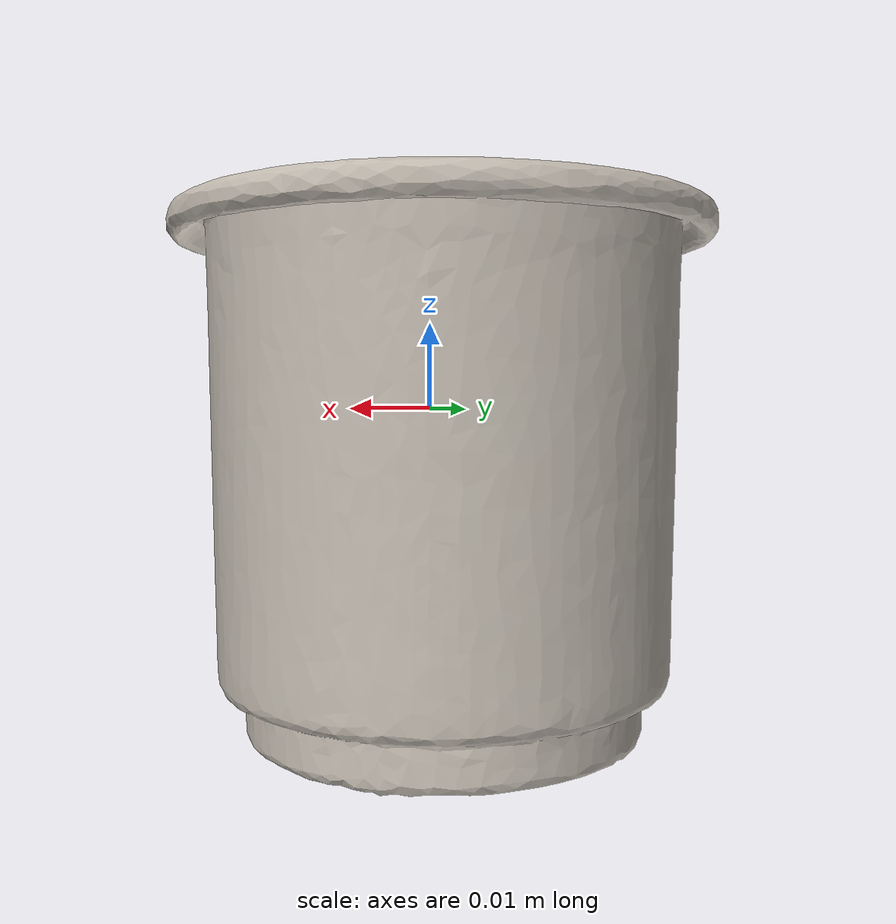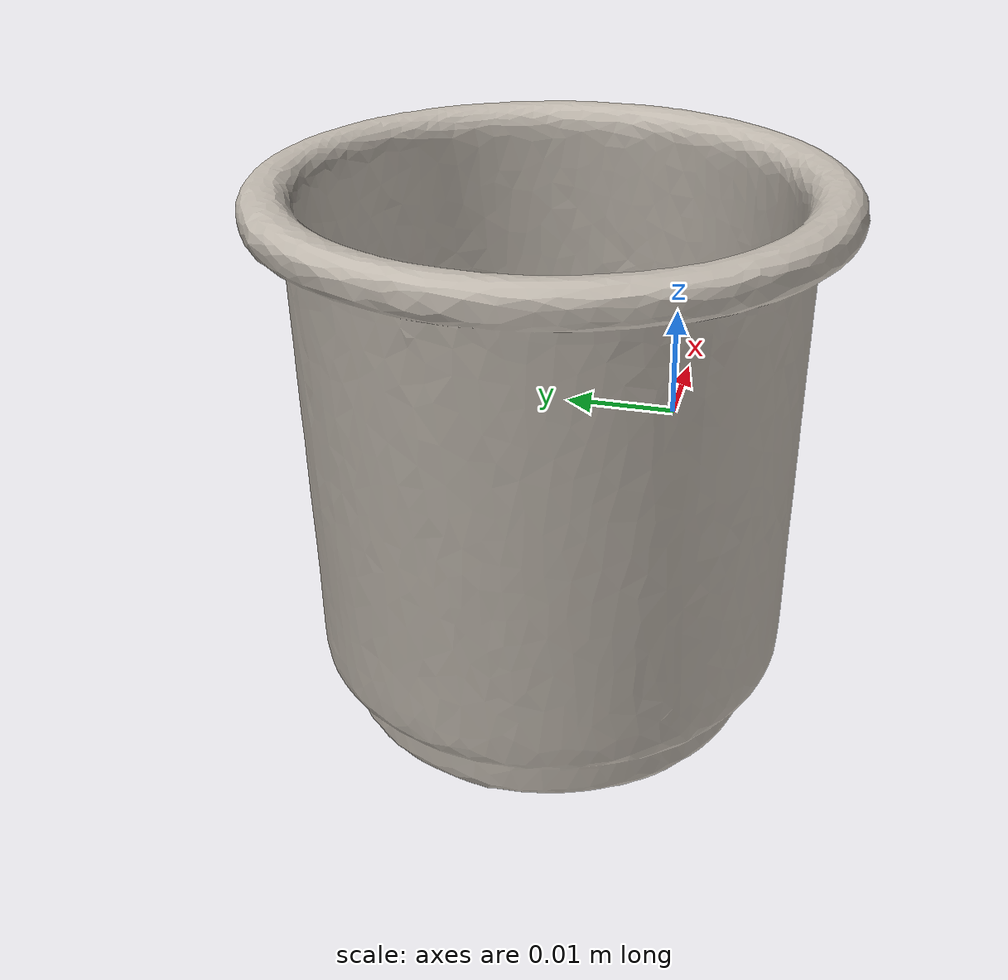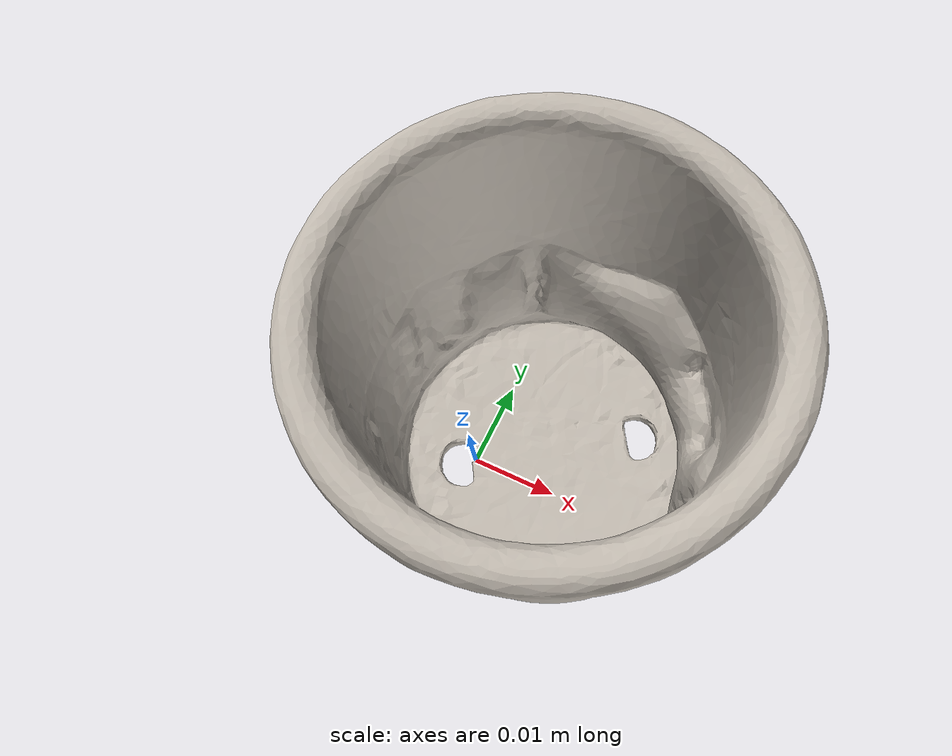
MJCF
<mujoco model="bread">
  <asset>
    <mesh file="nontextured.stl" name="obj_mesh" scale="0.8 0.8 0.8"/>
    <texture file="../../../../../textures/bread.png" type="2d" name="tex-bread" />
    <material name="bread" reflectance="0.7" texrepeat="15 15" texture="tex-bread" texuniform="true"/>
  </asset>
  <worldbody>
    <body>
      <body name="collision">
        <geom pos="0.019610499999999996 0.0626385 -0.033871" mesh="obj_mesh" type="mesh" solimp="0.998 0.998 0.001" solref="0.001 1" density="50" friction="0.95 0.3 0.1"  material="bread" group="1" condim="4"/>
      </body>
      <body name="visual">
        <geom pos="0.019610499999999996 0.0626385 -0.033871" mesh="obj_mesh" type="mesh" material="bread"  conaffinity="0" contype="0"  group="0" mass="0.0001"/>
        <geom pos="0.019610499999999996 0.0626385 -0.033871" mesh="obj_mesh" type="mesh" material="bread"  conaffinity="0" contype="0"  group="1" mass="0.0001"/>
      </body>
      <site rgba="0 0 0 0" size="0.005" pos="0 0 -0.034464999999999996" name="bottom_site"/>
      <site rgba="0 0 0 0" size="0.005" pos="0 0 0.034464999999999996" name="top_site"/>
      <site rgba="0 0 0 0" size="0.005" pos="0.0353445 0.035351499999999994 0.034464999999999996" name="horizontal_radius_site"/>
    </body>
  </worldbody>
</mujoco>
